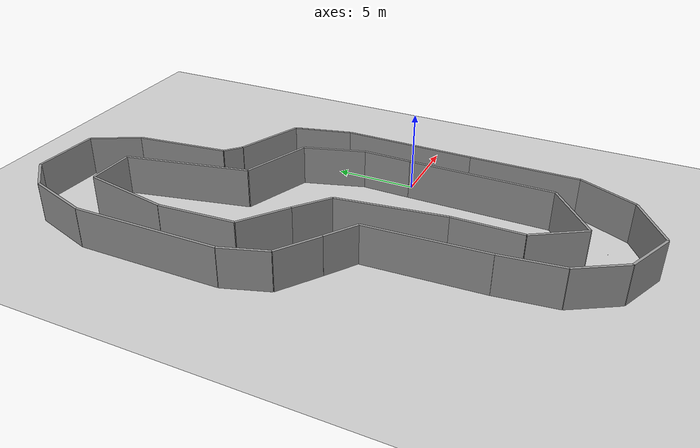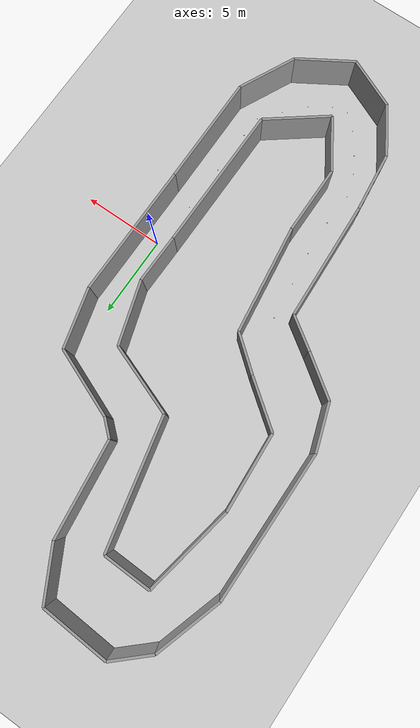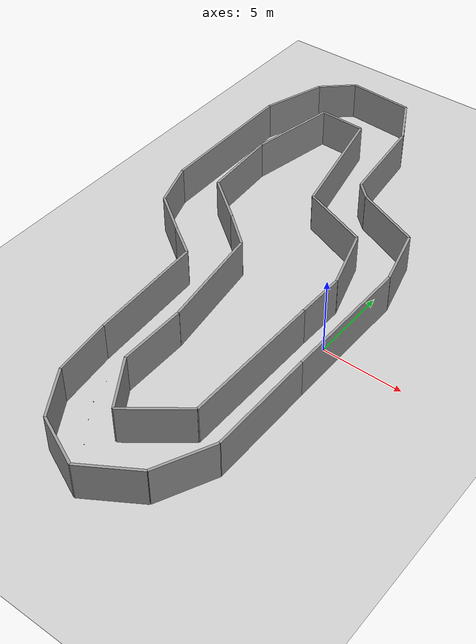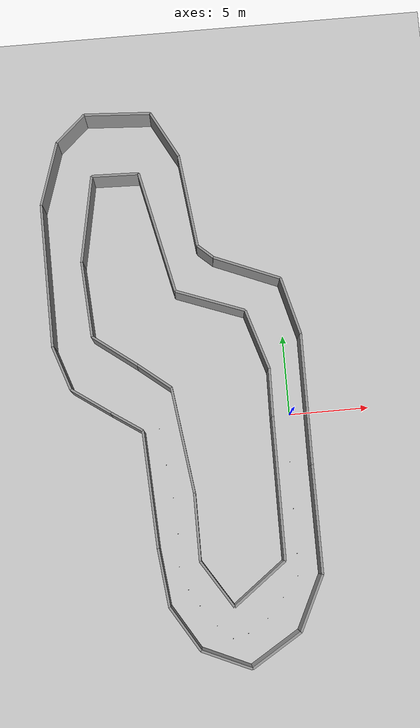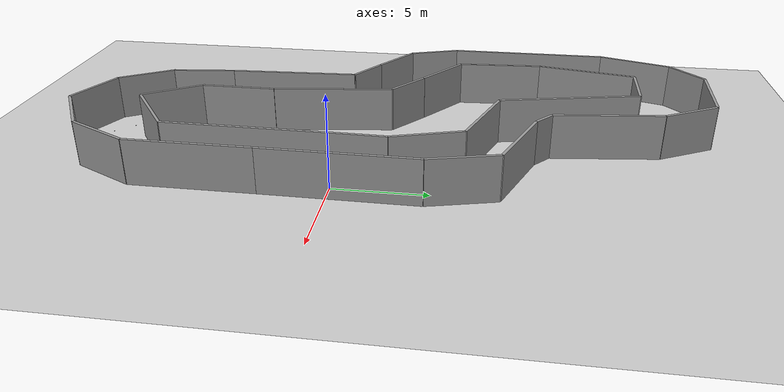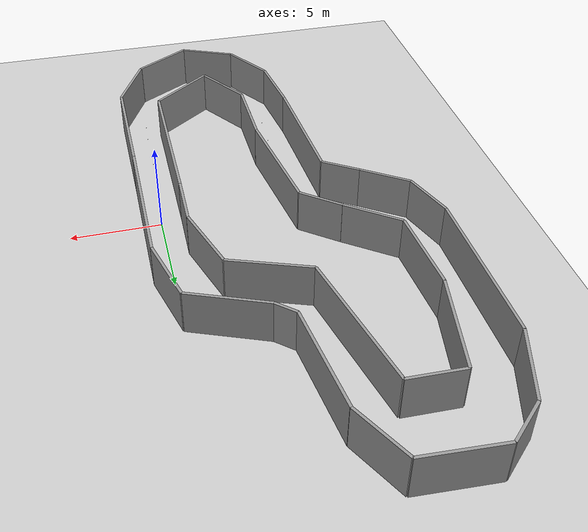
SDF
<sdf version="1.6">
 <world name="default">
  <model name="ground_plane">
   <static>1</static>
   <link name="link">
    <collision name="collision">
     <geometry><plane><normal>0 0 1</normal><size>100 100</size></plane></geometry>
     <surface><friction><ode><mu>100</mu><mu2>50</mu2></ode></friction></surface>
    </collision>
    <visual name="visual">
     <cast_shadows>0</cast_shadows>
     <geometry><plane><normal>0 0 1</normal><size>100 100</size></plane></geometry>
     <material>
      <script><uri>file://media/materials/scripts/gazebo.material</uri><name>Gazebo/Grey</name></script>
     </material>
    </visual>
   </link>
  </model>
  <model name="track2">
   <link name="wall_000">
    <collision name="wall_000_Collision">
     <geometry><box><size>4.375392 0.15 2.5</size></box></geometry>
     <pose>0 0 1.25 0 -0 0</pose>
    </collision>
    <visual name="wall_000_Visual">
     <pose>0 0 1.25 0 -0 0</pose>
     <geometry><box><size>4.375392 0.15 2.5</size></box></geometry>
     <material>
      <script><uri>file://media/materials/scripts/gazebo.material</uri><name>Gazebo/Grey</name></script>
      <ambient>1 1 1 1</ambient>
     </material>
     <meta><layer>0</layer></meta>
    </visual>
    <pose>-1.965100 9.167000 0 0 -0 -0.390624</pose>
   </link>
   <link name="wall_001">
    <collision name="wall_001_Collision">
     <geometry><box><size>1.246207 0.15 2.5</size></box></geometry>
     <pose>0 0 1.25 0 -0 0</pose>
    </collision>
    <visual name="wall_001_Visual">
     <pose>0 0 1.25 0 -0 0</pose>
     <geometry><box><size>1.246207 0.15 2.5</size></box></geometry>
     <material>
      <script><uri>file://media/materials/scripts/gazebo.material</uri><name>Gazebo/Grey</name></script>
      <ambient>1 1 1 1</ambient>
     </material>
     <meta><layer>0</layer></meta>
    </visual>
    <pose>-4.451000 10.417000 0 0 -0 -0.733173</pose>
   </link>
   <link name="wall_002">
    <collision name="wall_002_Collision">
     <geometry><box><size>5.872911 0.15 2.5</size></box></geometry>
     <pose>0 0 1.25 0 -0 0</pose>
    </collision>
    <visual name="wall_002_Visual">
     <pose>0 0 1.25 0 -0 0</pose>
     <geometry><box><size>5.872911 0.15 2.5</size></box></geometry>
     <material>
      <script><uri>file://media/materials/scripts/gazebo.material</uri><name>Gazebo/Grey</name></script>
      <ambient>1 1 1 1</ambient>
     </material>
     <meta><layer>0</layer></meta>
    </visual>
    <pose>-5.260000 13.750000 0 0 -0 -1.452693</pose>
   </link>
   <link name="wall_003">
    <collision name="wall_003_Collision">
     <geometry><box><size>3.309769 0.15 2.5</size></box></geometry>
     <pose>0 0 1.25 0 -0 0</pose>
    </collision>
    <visual name="wall_003_Visual">
     <pose>0 0 1.25 0 -0 0</pose>
     <geometry><box><size>3.309769 0.15 2.5</size></box></geometry>
     <material>
      <script><uri>file://media/materials/scripts/gazebo.material</uri><name>Gazebo/Grey</name></script>
      <ambient>1 1 1 1</ambient>
     </material>
     <meta><layer>0</layer></meta>
    </visual>
    <pose>-6.387000 18.125000 0 0 -0 -1.079311</pose>
   </link>
   <link name="wall_004">
    <collision name="wall_004_Collision">
     <geometry><box><size>4.169502 0.15 2.5</size></box></geometry>
     <pose>0 0 1.25 0 -0 0</pose>
    </collision>
    <visual name="wall_004_Visual">
     <pose>0 0 1.25 0 -0 0</pose>
     <geometry><box><size>4.169502 0.15 2.5</size></box></geometry>
     <material>
      <script><uri>file://media/materials/scripts/gazebo.material</uri><name>Gazebo/Grey</name></script>
      <ambient>1 1 1 1</ambient>
     </material>
     <meta><layer>0</layer></meta>
    </visual>
    <pose>-9.249000 19.709000 0 0 -0 -0.059995</pose>
   </link>
   <link name="wall_005">
    <collision name="wall_005_Collision">
     <geometry><box><size>2.490928 0.15 2.5</size></box></geometry>
     <pose>0 0 1.25 0 -0 0</pose>
    </collision>
    <visual name="wall_005_Visual">
     <pose>0 0 1.25 0 -0 0</pose>
     <geometry><box><size>2.490928 0.15 2.5</size></box></geometry>
     <material>
      <script><uri>file://media/materials/scripts/gazebo.material</uri><name>Gazebo/Grey</name></script>
      <ambient>1 1 1 1</ambient>
     </material>
     <meta><layer>0</layer></meta>
    </visual>
    <pose>-12.255000 19.000000 0 0 -0 0.733710</pose>
   </link>
   <link name="wall_006">
    <collision name="wall_006_Collision">
     <geometry><box><size>4.116790 0.15 2.5</size></box></geometry>
     <pose>0 0 1.25 0 -0 0</pose>
    </collision>
    <visual name="wall_006_Visual">
     <pose>0 0 1.25 0 -0 0</pose>
     <geometry><box><size>4.116790 0.15 2.5</size></box></geometry>
     <material>
      <script><uri>file://media/materials/scripts/gazebo.material</uri><name>Gazebo/Grey</name></script>
      <ambient>1 1 1 1</ambient>
     </material>
     <meta><layer>0</layer></meta>
    </visual>
    <pose>-13.815000 16.208000 0 0 -0 1.257188</pose>
   </link>
   <link name="wall_007">
    <collision name="wall_007_Collision">
     <geometry><box><size>9.000174 0.15 2.5</size></box></geometry>
     <pose>0 0 1.25 0 -0 0</pose>
    </collision>
    <visual name="wall_007_Visual">
     <pose>0 0 1.25 0 -0 0</pose>
     <geometry><box><size>9.000174 0.15 2.5</size></box></geometry>
     <material>
      <script><uri>file://media/materials/scripts/gazebo.material</uri><name>Gazebo/Grey</name></script>
      <ambient>1 1 1 1</ambient>
     </material>
     <meta><layer>0</layer></meta>
    </visual>
    <pose>-14.422000 9.750000 0 0 -0 1.577018</pose>
   </link>
   <link name="wall_008">
    <collision name="wall_008_Collision">
     <geometry><box><size>2.901719 0.15 2.5</size></box></geometry>
     <pose>0 0 1.25 0 -0 0</pose>
    </collision>
    <visual name="wall_008_Visual">
     <pose>0 0 1.25 0 -0 0</pose>
     <geometry><box><size>2.901719 0.15 2.5</size></box></geometry>
     <material>
      <script><uri>file://media/materials/scripts/gazebo.material</uri><name>Gazebo/Grey</name></script>
      <ambient>1 1 1 1</ambient>
     </material>
     <meta><layer>0</layer></meta>
    </visual>
    <pose>-13.931000 3.875000 0 0 -0 1.895598</pose>
   </link>
   <link name="wall_009">
    <collision name="wall_009_Collision">
     <geometry><box><size>2.897319 0.15 2.5</size></box></geometry>
     <pose>0 0 1.25 0 -0 0</pose>
    </collision>
    <visual name="wall_009_Visual">
     <pose>0 0 1.25 0 -0 0</pose>
     <geometry><box><size>2.897319 0.15 2.5</size></box></geometry>
     <material>
      <script><uri>file://media/materials/scripts/gazebo.material</uri><name>Gazebo/Grey</name></script>
      <ambient>1 1 1 1</ambient>
     </material>
     <meta><layer>0</layer></meta>
    </visual>
    <pose>-12.283000 1.666700 0 0 -0 2.528718</pose>
   </link>
   <link name="wall_010">
    <collision name="wall_010_Collision">
     <geometry><box><size>2.232711 0.15 2.5</size></box></geometry>
     <pose>0 0 1.25 0 -0 0</pose>
    </collision>
    <visual name="wall_010_Visual">
     <pose>0 0 1.25 0 -0 0</pose>
     <geometry><box><size>2.232711 0.15 2.5</size></box></geometry>
     <material>
      <script><uri>file://media/materials/scripts/gazebo.material</uri><name>Gazebo/Grey</name></script>
      <ambient>1 1 1 1</ambient>
     </material>
     <meta><layer>0</layer></meta>
    </visual>
    <pose>-10.173000 0.208400 0 0 -0 2.547379</pose>
   </link>
   <link name="wall_011">
    <collision name="wall_011_Collision">
     <geometry><box><size>7.257652 0.15 2.5</size></box></geometry>
     <pose>0 0 1.25 0 -0 0</pose>
    </collision>
    <visual name="wall_011_Visual">
     <pose>0 0 1.25 0 -0 0</pose>
     <geometry><box><size>7.257652 0.15 2.5</size></box></geometry>
     <material>
      <script><uri>file://media/materials/scripts/gazebo.material</uri><name>Gazebo/Grey</name></script>
      <ambient>1 1 1 1</ambient>
     </material>
     <meta><layer>0</layer></meta>
    </visual>
    <pose>-9.075000 -4.041300 0 0 -0 1.618488</pose>
   </link>
   <link name="wall_012">
    <collision name="wall_012_Collision">
     <geometry><box><size>3.606698 0.15 2.5</size></box></geometry>
     <pose>0 0 1.25 0 -0 0</pose>
    </collision>
    <visual name="wall_012_Visual">
     <pose>0 0 1.25 0 -0 0</pose>
     <geometry><box><size>3.606698 0.15 2.5</size></box></geometry>
     <material>
      <script><uri>file://media/materials/scripts/gazebo.material</uri><name>Gazebo/Grey</name></script>
      <ambient>1 1 1 1</ambient>
     </material>
     <meta><layer>0</layer></meta>
    </visual>
    <pose>-8.700000 -9.458000 0 0 -0 1.683046</pose>
   </link>
   <link name="wall_013">
    <collision name="wall_013_Collision">
     <geometry><box><size>3.221519 0.15 2.5</size></box></geometry>
     <pose>0 0 1.25 0 -0 0</pose>
    </collision>
    <visual name="wall_013_Visual">
     <pose>0 0 1.25 0 -0 0</pose>
     <geometry><box><size>3.221519 0.15 2.5</size></box></geometry>
     <material>
      <script><uri>file://media/materials/scripts/gazebo.material</uri><name>Gazebo/Grey</name></script>
      <ambient>1 1 1 1</ambient>
     </material>
     <meta><layer>0</layer></meta>
    </visual>
    <pose>-7.659000 -12.625000 0 0 -0 2.118669</pose>
   </link>
   <link name="wall_014">
    <collision name="wall_014_Collision">
     <geometry><box><size>3.286879 0.15 2.5</size></box></geometry>
     <pose>0 0 1.25 0 -0 0</pose>
    </collision>
    <visual name="wall_014_Visual">
     <pose>0 0 1.25 0 -0 0</pose>
     <geometry><box><size>3.286879 0.15 2.5</size></box></geometry>
     <material>
      <script><uri>file://media/materials/scripts/gazebo.material</uri><name>Gazebo/Grey</name></script>
      <ambient>1 1 1 1</ambient>
     </material>
     <meta><layer>0</layer></meta>
    </visual>
    <pose>-5.318000 -14.667000 0 0 -0 2.723677</pose>
   </link>
   <link name="wall_015">
    <collision name="wall_015_Collision">
     <geometry><box><size>3.664438 0.15 2.5</size></box></geometry>
     <pose>0 0 1.25 0 -0 0</pose>
    </collision>
    <visual name="wall_015_Visual">
     <pose>0 0 1.25 0 -0 0</pose>
     <geometry><box><size>3.664438 0.15 2.5</size></box></geometry>
     <material>
      <script><uri>file://media/materials/scripts/gazebo.material</uri><name>Gazebo/Grey</name></script>
      <ambient>1 1 1 1</ambient>
     </material>
     <meta><layer>0</layer></meta>
    </visual>
    <pose>-2.254800 -14.375000 0 0 -0 -2.590746</pose>
   </link>
   <link name="wall_016">
    <collision name="wall_016_Collision">
     <geometry><box><size>3.704247 0.15 2.5</size></box></geometry>
     <pose>0 0 1.25 0 -0 0</pose>
    </collision>
    <visual name="wall_016_Visual">
     <pose>0 0 1.25 0 -0 0</pose>
     <geometry><box><size>3.704247 0.15 2.5</size></box></geometry>
     <material>
      <script><uri>file://media/materials/scripts/gazebo.material</uri><name>Gazebo/Grey</name></script>
      <ambient>1 1 1 1</ambient>
     </material>
     <meta><layer>0</layer></meta>
    </visual>
    <pose>0.115600 -11.750000 0 0 -0 -2.022950</pose>
   </link>
   <link name="wall_017">
    <collision name="wall_017_Collision">
     <geometry><box><size>6.668000 0.15 2.5</size></box></geometry>
     <pose>0 0 1.25 0 -0 0</pose>
    </collision>
    <visual name="wall_017_Visual">
     <pose>0 0 1.25 0 -0 0</pose>
     <geometry><box><size>6.668000 0.15 2.5</size></box></geometry>
     <material>
      <script><uri>file://media/materials/scripts/gazebo.material</uri><name>Gazebo/Grey</name></script>
      <ambient>1 1 1 1</ambient>
     </material>
     <meta><layer>0</layer></meta>
    </visual>
    <pose>0.924800 -6.750000 0 0 -0 -1.570796</pose>
   </link>
   <link name="wall_018">
    <collision name="wall_018_Collision">
     <geometry><box><size>8.166205 0.15 2.5</size></box></geometry>
     <pose>0 0 1.25 0 -0 0</pose>
    </collision>
    <visual name="wall_018_Visual">
     <pose>0 0 1.25 0 -0 0</pose>
     <geometry><box><size>8.166205 0.15 2.5</size></box></geometry>
     <material>
      <script><uri>file://media/materials/scripts/gazebo.material</uri><name>Gazebo/Grey</name></script>
      <ambient>1 1 1 1</ambient>
     </material>
     <meta><layer>0</layer></meta>
    </visual>
    <pose>0.953700 0.667000 0 0 -0 -1.577874</pose>
   </link>
   <link name="wall_019">
    <collision name="wall_019_Collision">
     <geometry><box><size>3.701393 0.15 2.5</size></box></geometry>
     <pose>0 0 1.25 0 -0 0</pose>
    </collision>
    <visual name="wall_019_Visual">
     <pose>0 0 1.25 0 -0 0</pose>
     <geometry><box><size>3.701393 0.15 2.5</size></box></geometry>
     <material>
      <script><uri>file://media/materials/scripts/gazebo.material</uri><name>Gazebo/Grey</name></script>
      <ambient>1 1 1 1</ambient>
     </material>
     <meta><layer>0</layer></meta>
    </visual>
    <pose>0.520200 6.542000 0 0 -0 -1.318269</pose>
   </link>
   <link name="wall_020">
    <collision name="wall_020_Collision">
     <geometry><box><size>4.507489 0.15 2.5</size></box></geometry>
     <pose>0 0 1.25 0 -0 0</pose>
    </collision>
    <visual name="wall_020_Visual">
     <pose>0 0 1.25 0 -0 0</pose>
     <geometry><box><size>4.507489 0.15 2.5</size></box></geometry>
     <material>
      <script><uri>file://media/materials/scripts/gazebo.material</uri><name>Gazebo/Grey</name></script>
      <ambient>1 1 1 1</ambient>
     </material>
     <meta><layer>0</layer></meta>
    </visual>
    <pose>-4.422000 7.292000 0 0 -0 -0.359082</pose>
   </link>
   <link name="wall_021">
    <collision name="wall_021_Collision">
     <geometry><box><size>7.847072 0.15 2.5</size></box></geometry>
     <pose>0 0 1.25 0 -0 0</pose>
    </collision>
    <visual name="wall_021_Visual">
     <pose>0 0 1.25 0 -0 0</pose>
     <geometry><box><size>7.847072 0.15 2.5</size></box></geometry>
     <material>
      <script><uri>file://media/materials/scripts/gazebo.material</uri><name>Gazebo/Grey</name></script>
      <ambient>1 1 1 1</ambient>
     </material>
     <meta><layer>0</layer></meta>
    </visual>
    <pose>-7.370000 11.917000 0 0 -0 -1.355555</pose>
   </link>
   <link name="wall_022">
    <collision name="wall_022_Collision">
     <geometry><box><size>2.949197 0.15 2.5</size></box></geometry>
     <pose>0 0 1.25 0 -0 0</pose>
    </collision>
    <visual name="wall_022_Visual">
     <pose>0 0 1.25 0 -0 0</pose>
     <geometry><box><size>2.949197 0.15 2.5</size></box></geometry>
     <material>
      <script><uri>file://media/materials/scripts/gazebo.material</uri><name>Gazebo/Grey</name></script>
      <ambient>1 1 1 1</ambient>
     </material>
     <meta><layer>0</layer></meta>
    </visual>
    <pose>-9.682000 15.792000 0 0 -0 -0.028486</pose>
   </link>
   <link name="wall_023">
    <collision name="wall_023_Collision">
     <geometry><box><size>5.516913 0.15 2.5</size></box></geometry>
     <pose>0 0 1.25 0 -0 0</pose>
    </collision>
    <visual name="wall_023_Visual">
     <pose>0 0 1.25 0 -0 0</pose>
     <geometry><box><size>5.516913 0.15 2.5</size></box></geometry>
     <material>
      <script><uri>file://media/materials/scripts/gazebo.material</uri><name>Gazebo/Grey</name></script>
      <ambient>1 1 1 1</ambient>
     </material>
     <meta><layer>0</layer></meta>
    </visual>
    <pose>-11.676000 13.125000 0 0 -0 1.381150</pose>
   </link>
   <link name="wall_024">
    <collision name="wall_024_Collision">
     <geometry><box><size>4.758723 0.15 2.5</size></box></geometry>
     <pose>0 0 1.25 0 -0 0</pose>
    </collision>
    <visual name="wall_024_Visual">
     <pose>0 0 1.25 0 -0 0</pose>
     <geometry><box><size>4.758723 0.15 2.5</size></box></geometry>
     <material>
      <script><uri>file://media/materials/scripts/gazebo.material</uri><name>Gazebo/Grey</name></script>
      <ambient>1 1 1 1</ambient>
     </material>
     <meta><layer>0</layer></meta>
    </visual>
    <pose>-12.052000 8.041000 0 0 -0 1.631354</pose>
   </link>
   <link name="wall_025">
    <collision name="wall_025_Collision">
     <geometry><box><size>3.328002 0.15 2.5</size></box></geometry>
     <pose>0 0 1.25 0 -0 0</pose>
    </collision>
    <visual name="wall_025_Visual">
     <pose>0 0 1.25 0 -0 0</pose>
     <geometry><box><size>3.328002 0.15 2.5</size></box></geometry>
     <material>
      <script><uri>file://media/materials/scripts/gazebo.material</uri><name>Gazebo/Grey</name></script>
      <ambient>1 1 1 1</ambient>
     </material>
     <meta><layer>0</layer></meta>
    </visual>
    <pose>-10.578000 4.666000 0 0 -0 2.496890</pose>
   </link>
   <link name="wall_026">
    <collision name="wall_026_Collision">
     <geometry><box><size>2.521908 0.15 2.5</size></box></geometry>
     <pose>0 0 1.25 0 -0 0</pose>
    </collision>
    <visual name="wall_026_Visual">
     <pose>0 0 1.25 0 -0 0</pose>
     <geometry><box><size>2.521908 0.15 2.5</size></box></geometry>
     <material>
      <script><uri>file://media/materials/scripts/gazebo.material</uri><name>Gazebo/Grey</name></script>
      <ambient>1 1 1 1</ambient>
     </material>
     <meta><layer>0</layer></meta>
    </visual>
    <pose>-8.266000 2.875000 0 0 -0 2.463508</pose>
   </link>
   <link name="wall_027">
    <collision name="wall_027_Collision">
     <geometry><box><size>6.640970 0.15 2.5</size></box></geometry>
     <pose>0 0 1.25 0 -0 0</pose>
    </collision>
    <visual name="wall_027_Visual">
     <pose>0 0 1.25 0 -0 0</pose>
     <geometry><box><size>6.640970 0.15 2.5</size></box></geometry>
     <material>
      <script><uri>file://media/materials/scripts/gazebo.material</uri><name>Gazebo/Grey</name></script>
      <ambient>1 1 1 1</ambient>
     </material>
     <meta><layer>0</layer></meta>
    </visual>
    <pose>-6.850000 -1.208000 0 0 -0 1.701875</pose>
   </link>
   <link name="wall_028">
    <collision name="wall_028_Collision">
     <geometry><box><size>4.166000 0.15 2.5</size></box></geometry>
     <pose>0 0 1.25 0 -0 0</pose>
    </collision>
    <visual name="wall_028_Visual">
     <pose>0 0 1.25 0 -0 0</pose>
     <geometry><box><size>4.166000 0.15 2.5</size></box></geometry>
     <material>
      <script><uri>file://media/materials/scripts/gazebo.material</uri><name>Gazebo/Grey</name></script>
      <ambient>1 1 1 1</ambient>
     </material>
     <meta><layer>0</layer></meta>
    </visual>
    <pose>-6.416000 -6.583000 0 0 -0 1.570796</pose>
   </link>
   <link name="wall_029">
    <collision name="wall_029_Collision">
     <geometry><box><size>3.455029 0.15 2.5</size></box></geometry>
     <pose>0 0 1.25 0 -0 0</pose>
    </collision>
    <visual name="wall_029_Visual">
     <pose>0 0 1.25 0 -0 0</pose>
     <geometry><box><size>3.455029 0.15 2.5</size></box></geometry>
     <material>
      <script><uri>file://media/materials/scripts/gazebo.material</uri><name>Gazebo/Grey</name></script>
      <ambient>1 1 1 1</ambient>
     </material>
     <meta><layer>0</layer></meta>
    </visual>
    <pose>-5.491000 -10.125000 0 0 -0 2.135838</pose>
   </link>
   <link name="wall_030">
    <collision name="wall_030_Collision">
     <geometry><box><size>4.135586 0.15 2.5</size></box></geometry>
     <pose>0 0 1.25 0 -0 0</pose>
    </collision>
    <visual name="wall_030_Visual">
     <pose>0 0 1.25 0 -0 0</pose>
     <geometry><box><size>4.135586 0.15 2.5</size></box></geometry>
     <material>
      <script><uri>file://media/materials/scripts/gazebo.material</uri><name>Gazebo/Grey</name></script>
      <ambient>1 1 1 1</ambient>
     </material>
     <meta><layer>0</layer></meta>
    </visual>
    <pose>-2.918800 -10.334000 0 0 -0 -2.492443</pose>
   </link>
   <link name="wall_031">
    <collision name="wall_031_Collision">
     <geometry><box><size>8.834189 0.15 2.5</size></box></geometry>
     <pose>0 0 1.25 0 -0 0</pose>
    </collision>
    <visual name="wall_031_Visual">
     <pose>0 0 1.25 0 -0 0</pose>
     <geometry><box><size>8.834189 0.15 2.5</size></box></geometry>
     <material>
      <script><uri>file://media/materials/scripts/gazebo.material</uri><name>Gazebo/Grey</name></script>
      <ambient>1 1 1 1</ambient>
     </material>
     <meta><layer>0</layer></meta>
    </visual>
    <pose>-1.242700 -4.667000 0 0 -0 -1.577339</pose>
   </link>
   <link name="wall_032">
    <collision name="wall_032_Collision">
     <geometry><box><size>3.000557 0.15 2.5</size></box></geometry>
     <pose>0 0 1.25 0 -0 0</pose>
    </collision>
    <visual name="wall_032_Visual">
     <pose>0 0 1.25 0 -0 0</pose>
     <geometry><box><size>3.000557 0.15 2.5</size></box></geometry>
     <material>
      <script><uri>file://media/materials/scripts/gazebo.material</uri><name>Gazebo/Grey</name></script>
      <ambient>1 1 1 1</ambient>
     </material>
     <meta><layer>0</layer></meta>
    </visual>
    <pose>-1.184900 1.250000 0 0 -0 -1.590061</pose>
   </link>
   <link name="wall_033">
    <collision name="wall_033_Collision">
     <geometry><box><size>3.924135 0.15 2.5</size></box></geometry>
     <pose>0 0 1.25 0 -0 0</pose>
    </collision>
    <visual name="wall_033_Visual">
     <pose>0 0 1.25 0 -0 0</pose>
     <geometry><box><size>3.924135 0.15 2.5</size></box></geometry>
     <material>
      <script><uri>file://media/materials/scripts/gazebo.material</uri><name>Gazebo/Grey</name></script>
      <ambient>1 1 1 1</ambient>
     </material>
     <meta><layer>0</layer></meta>
    </visual>
    <pose>-1.734000 4.625000 0 0 -0 -1.271773</pose>
   </link>
   <static>1</static>
  </model>
  <model name="unit_sphere_0_24">
   <pose>-8.290000 -0.190000 0.020000 0 -0 0</pose>
   <link name="link">
    <inertial>
     <mass>1</mass>
     <inertia><ixx>0.1</ixx><ixy>0</ixy><ixz>0</ixz><iyy>0.1</iyy><iyz>0</iyz><izz>0.1</izz></inertia>
    </inertial>
    <collision name="collision"><geometry><sphere><radius>0.020000</radius></sphere></geometry></collision>
    <visual name="visual">
     <geometry><sphere><radius>0.020000</radius></sphere></geometry>
     <material>
      <script><name>Gazebo/Grey</name><uri>file://media/materials/scripts/gazebo.material</uri></script>
     </material>
    </visual>
   </link>
  </model>
  <model name="unit_sphere_0_25">
   <pose>-8.040000 -2.510000 0.020000 0 -0 0</pose>
   <link name="link">
    <inertial>
     <mass>1</mass>
     <inertia><ixx>0.1</ixx><ixy>0</ixy><ixz>0</ixz><iyy>0.1</iyy><iyz>0</iyz><izz>0.1</izz></inertia>
    </inertial>
    <collision name="collision"><geometry><sphere><radius>0.020000</radius></sphere></geometry></collision>
    <visual name="visual">
     <geometry><sphere><radius>0.020000</radius></sphere></geometry>
     <material>
      <script><name>Gazebo/Grey</name><uri>file://media/materials/scripts/gazebo.material</uri></script>
     </material>
    </visual>
   </link>
  </model>
  <model name="unit_sphere_0_26">
   <pose>-7.770000 -4.590000 0.020000 0 -0 0</pose>
   <link name="link">
    <inertial>
     <mass>1</mass>
     <inertia><ixx>0.1</ixx><ixy>0</ixy><ixz>0</ixz><iyy>0.1</iyy><iyz>0</iyz><izz>0.1</izz></inertia>
    </inertial>
    <collision name="collision"><geometry><sphere><radius>0.020000</radius></sphere></geometry></collision>
    <visual name="visual">
     <geometry><sphere><radius>0.020000</radius></sphere></geometry>
     <material>
      <script><name>Gazebo/Grey</name><uri>file://media/materials/scripts/gazebo.material</uri></script>
     </material>
    </visual>
   </link>
  </model>
  <model name="unit_sphere_0_27">
   <pose>-7.670000 -6.870000 0.020000 0 -0 0</pose>
   <link name="link">
    <inertial>
     <mass>1</mass>
     <inertia><ixx>0.1</ixx><ixy>0</ixy><ixz>0</ixz><iyy>0.1</iyy><iyz>0</iyz><izz>0.1</izz></inertia>
    </inertial>
    <collision name="collision"><geometry><sphere><radius>0.020000</radius></sphere></geometry></collision>
    <visual name="visual">
     <geometry><sphere><radius>0.020000</radius></sphere></geometry>
     <material>
      <script><name>Gazebo/Grey</name><uri>file://media/materials/scripts/gazebo.material</uri></script>
     </material>
    </visual>
   </link>
  </model>
  <model name="unit_sphere_0_28">
   <pose>-7.760000 -8.930000 0.020000 0 -0 0</pose>
   <link name="link">
    <inertial>
     <mass>1</mass>
     <inertia><ixx>0.1</ixx><ixy>0</ixy><ixz>0</ixz><iyy>0.1</iyy><iyz>0</iyz><izz>0.1</izz></inertia>
    </inertial>
    <collision name="collision"><geometry><sphere><radius>0.020000</radius></sphere></geometry></collision>
    <visual name="visual">
     <geometry><sphere><radius>0.020000</radius></sphere></geometry>
     <material>
      <script><name>Gazebo/Grey</name><uri>file://media/materials/scripts/gazebo.material</uri></script>
     </material>
    </visual>
   </link>
  </model>
  <model name="unit_sphere_0_29">
   <pose>-7.310000 -10.390000 0.020000 0 -0 0</pose>
   <link name="link">
    <inertial>
     <mass>1</mass>
     <inertia><ixx>0.1</ixx><ixy>0</ixy><ixz>0</ixz><iyy>0.1</iyy><iyz>0</iyz><izz>0.1</izz></inertia>
    </inertial>
    <collision name="collision"><geometry><sphere><radius>0.020000</radius></sphere></geometry></collision>
    <visual name="visual">
     <geometry><sphere><radius>0.020000</radius></sphere></geometry>
     <material>
      <script><name>Gazebo/Grey</name><uri>file://media/materials/scripts/gazebo.material</uri></script>
     </material>
    </visual>
   </link>
  </model>
  <model name="unit_sphere_0_30">
   <pose>-6.680000 -11.440000 0.020000 0 -0 0</pose>
   <link name="link">
    <inertial>
     <mass>1</mass>
     <inertia><ixx>0.1</ixx><ixy>0</ixy><ixz>0</ixz><iyy>0.1</iyy><iyz>0</iyz><izz>0.1</izz></inertia>
    </inertial>
    <collision name="collision"><geometry><sphere><radius>0.020000</radius></sphere></geometry></collision>
    <visual name="visual">
     <geometry><sphere><radius>0.020000</radius></sphere></geometry>
     <material>
      <script><name>Gazebo/Grey</name><uri>file://media/materials/scripts/gazebo.material</uri></script>
     </material>
    </visual>
   </link>
  </model>
  <model name="unit_sphere_0_31">
   <pose>-5.720000 -12.750000 0.020000 0 -0 0</pose>
   <link name="link">
    <inertial>
     <mass>1</mass>
     <inertia><ixx>0.1</ixx><ixy>0</ixy><ixz>0</ixz><iyy>0.1</iyy><iyz>0</iyz><izz>0.1</izz></inertia>
    </inertial>
    <collision name="collision"><geometry><sphere><radius>0.020000</radius></sphere></geometry></collision>
    <visual name="visual">
     <geometry><sphere><radius>0.020000</radius></sphere></geometry>
     <material>
      <script><name>Gazebo/Grey</name><uri>file://media/materials/scripts/gazebo.material</uri></script>
     </material>
    </visual>
   </link>
  </model>
  <model name="unit_sphere_0_32">
   <pose>-4.800000 -13.620000 0.020000 0 -0 0</pose>
   <link name="link">
    <inertial>
     <mass>1</mass>
     <inertia><ixx>0.1</ixx><ixy>0</ixy><ixz>0</ixz><iyy>0.1</iyy><iyz>0</iyz><izz>0.1</izz></inertia>
    </inertial>
    <collision name="collision"><geometry><sphere><radius>0.020000</radius></sphere></geometry></collision>
    <visual name="visual">
     <geometry><sphere><radius>0.020000</radius></sphere></geometry>
     <material>
      <script><name>Gazebo/Grey</name><uri>file://media/materials/scripts/gazebo.material</uri></script>
     </material>
    </visual>
   </link>
  </model>
  <model name="unit_sphere_0_33">
   <pose>-3.820000 -13.390000 0.020000 0 -0 0</pose>
   <link name="link">
    <inertial>
     <mass>1</mass>
     <inertia><ixx>0.1</ixx><ixy>0</ixy><ixz>0</ixz><iyy>0.1</iyy><iyz>0</iyz><izz>0.1</izz></inertia>
    </inertial>
    <collision name="collision"><geometry><sphere><radius>0.020000</radius></sphere></geometry></collision>
    <visual name="visual">
     <geometry><sphere><radius>0.020000</radius></sphere></geometry>
     <material>
      <script><name>Gazebo/Grey</name><uri>file://media/materials/scripts/gazebo.material</uri></script>
     </material>
    </visual>
   </link>
  </model>
  <model name="unit_sphere_0_34">
   <pose>-2.540000 -12.560000 0.020000 0 -0 0</pose>
   <link name="link">
    <inertial>
     <mass>1</mass>
     <inertia><ixx>0.1</ixx><ixy>0</ixy><ixz>0</ixz><iyy>0.1</iyy><iyz>0</iyz><izz>0.1</izz></inertia>
    </inertial>
    <collision name="collision"><geometry><sphere><radius>0.020000</radius></sphere></geometry></collision>
    <visual name="visual">
     <geometry><sphere><radius>0.020000</radius></sphere></geometry>
     <material>
      <script><name>Gazebo/Grey</name><uri>file://media/materials/scripts/gazebo.material</uri></script>
     </material>
    </visual>
   </link>
  </model>
  <model name="unit_sphere_0_35">
   <pose>-1.450000 -11.360000 0.020000 0 -0 0</pose>
   <link name="link">
    <inertial>
     <mass>1</mass>
     <inertia><ixx>0.1</ixx><ixy>0</ixy><ixz>0</ixz><iyy>0.1</iyy><iyz>0</iyz><izz>0.1</izz></inertia>
    </inertial>
    <collision name="collision"><geometry><sphere><radius>0.020000</radius></sphere></geometry></collision>
    <visual name="visual">
     <geometry><sphere><radius>0.020000</radius></sphere></geometry>
     <material>
      <script><name>Gazebo/Grey</name><uri>file://media/materials/scripts/gazebo.material</uri></script>
     </material>
    </visual>
   </link>
  </model>
  <model name="unit_sphere_0_36">
   <pose>-0.420000 -10.110000 0.020000 0 -0 0</pose>
   <link name="link">
    <inertial>
     <mass>1</mass>
     <inertia><ixx>0.1</ixx><ixy>0</ixy><ixz>0</ixz><iyy>0.1</iyy><iyz>0</iyz><izz>0.1</izz></inertia>
    </inertial>
    <collision name="collision"><geometry><sphere><radius>0.020000</radius></sphere></geometry></collision>
    <visual name="visual">
     <geometry><sphere><radius>0.020000</radius></sphere></geometry>
     <material>
      <script><name>Gazebo/Grey</name><uri>file://media/materials/scripts/gazebo.material</uri></script>
     </material>
    </visual>
   </link>
  </model>
  <model name="unit_sphere_0_37">
   <pose>-0.350000 -8.730000 0.020000 0 -0 0</pose>
   <link name="link">
    <inertial>
     <mass>1</mass>
     <inertia><ixx>0.1</ixx><ixy>0</ixy><ixz>0</ixz><iyy>0.1</iyy><iyz>0</iyz><izz>0.1</izz></inertia>
    </inertial>
    <collision name="collision"><geometry><sphere><radius>0.020000</radius></sphere></geometry></collision>
    <visual name="visual">
     <geometry><sphere><radius>0.020000</radius></sphere></geometry>
     <material>
      <script><name>Gazebo/Grey</name><uri>file://media/materials/scripts/gazebo.material</uri></script>
     </material>
    </visual>
   </link>
  </model>
  <model name="unit_sphere_0_38">
   <pose>-0.320000 -5.930000 0.020000 0 -0 0</pose>
   <link name="link">
    <inertial>
     <mass>1</mass>
     <inertia><ixx>0.1</ixx><ixy>0</ixy><ixz>0</ixz><iyy>0.1</iyy><iyz>0</iyz><izz>0.1</izz></inertia>
    </inertial>
    <collision name="collision"><geometry><sphere><radius>0.020000</radius></sphere></geometry></collision>
    <visual name="visual">
     <geometry><sphere><radius>0.020000</radius></sphere></geometry>
     <material>
      <script><name>Gazebo/Grey</name><uri>file://media/materials/scripts/gazebo.material</uri></script>
     </material>
    </visual>
   </link>
  </model>
  <model name="unit_sphere_0_39">
   <pose>-0.250000 -2.970000 0.020000 0 -0 0</pose>
   <link name="link">
    <inertial>
     <mass>1</mass>
     <inertia><ixx>0.1</ixx><ixy>0</ixy><ixz>0</ixz><iyy>0.1</iyy><iyz>0</iyz><izz>0.1</izz></inertia>
    </inertial>
    <collision name="collision"><geometry><sphere><radius>0.020000</radius></sphere></geometry></collision>
    <visual name="visual">
     <geometry><sphere><radius>0.020000</radius></sphere></geometry>
     <material>
      <script><name>Gazebo/Grey</name><uri>file://media/materials/scripts/gazebo.material</uri></script>
     </material>
    </visual>
   </link>
  </model>
 </world>
</sdf>
